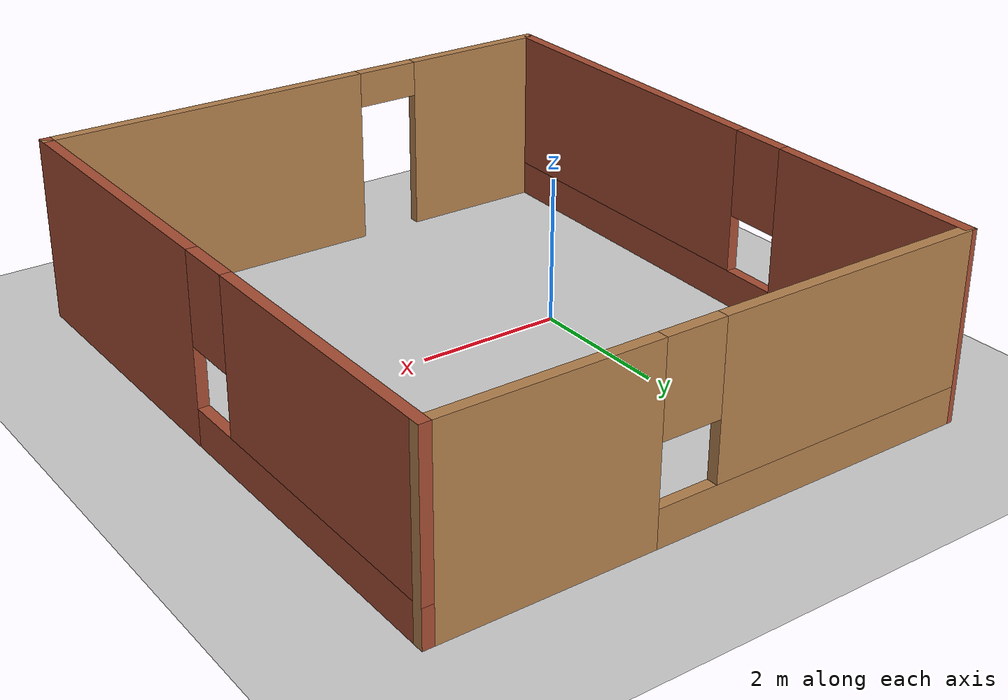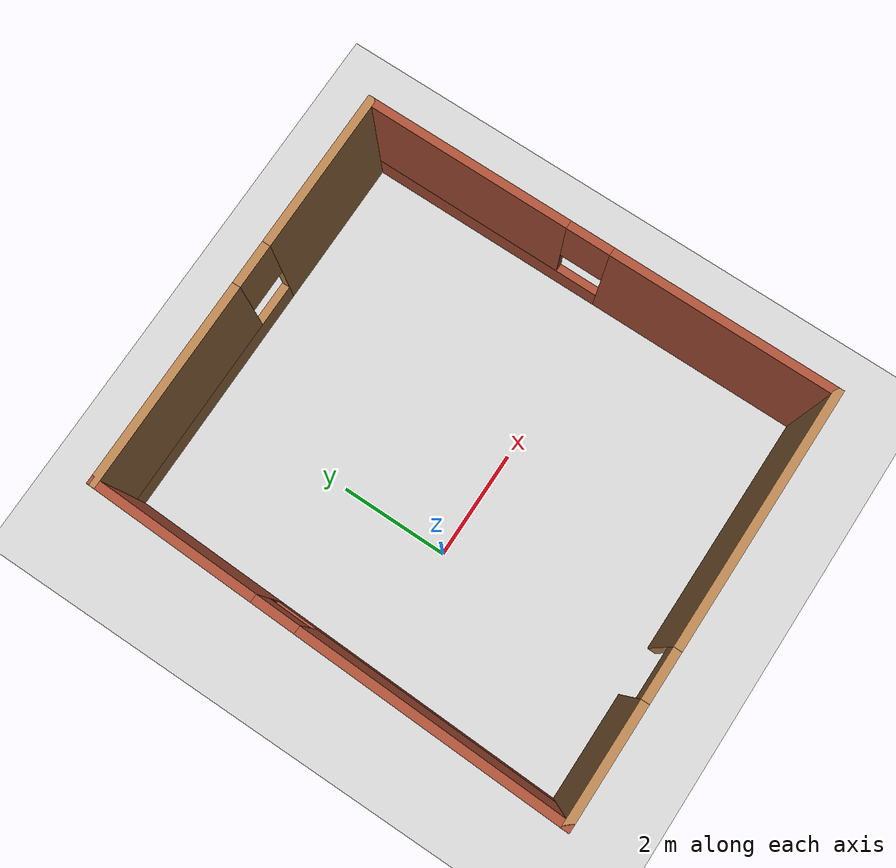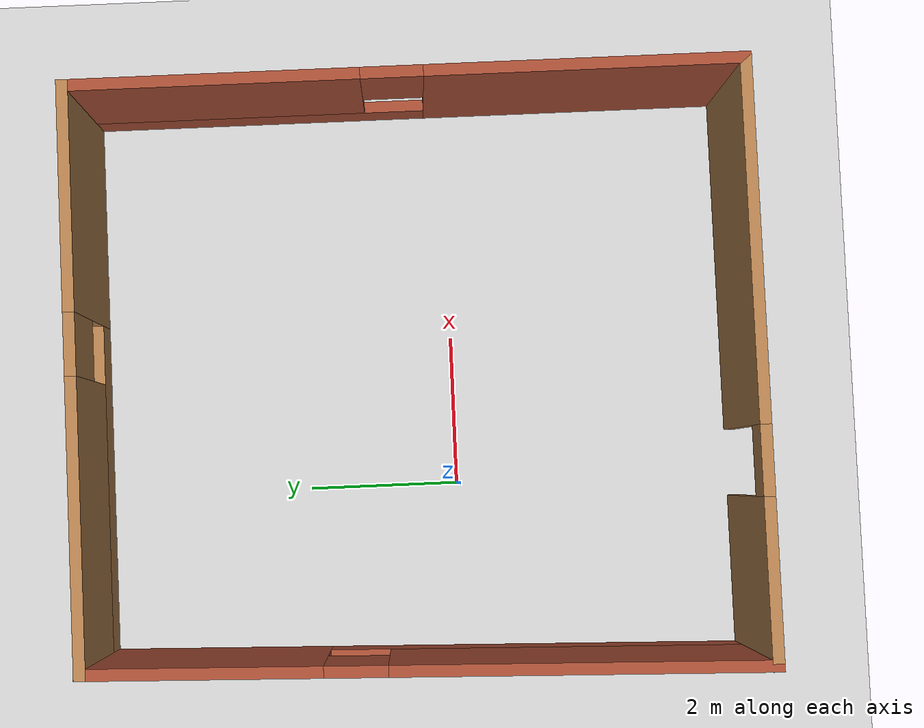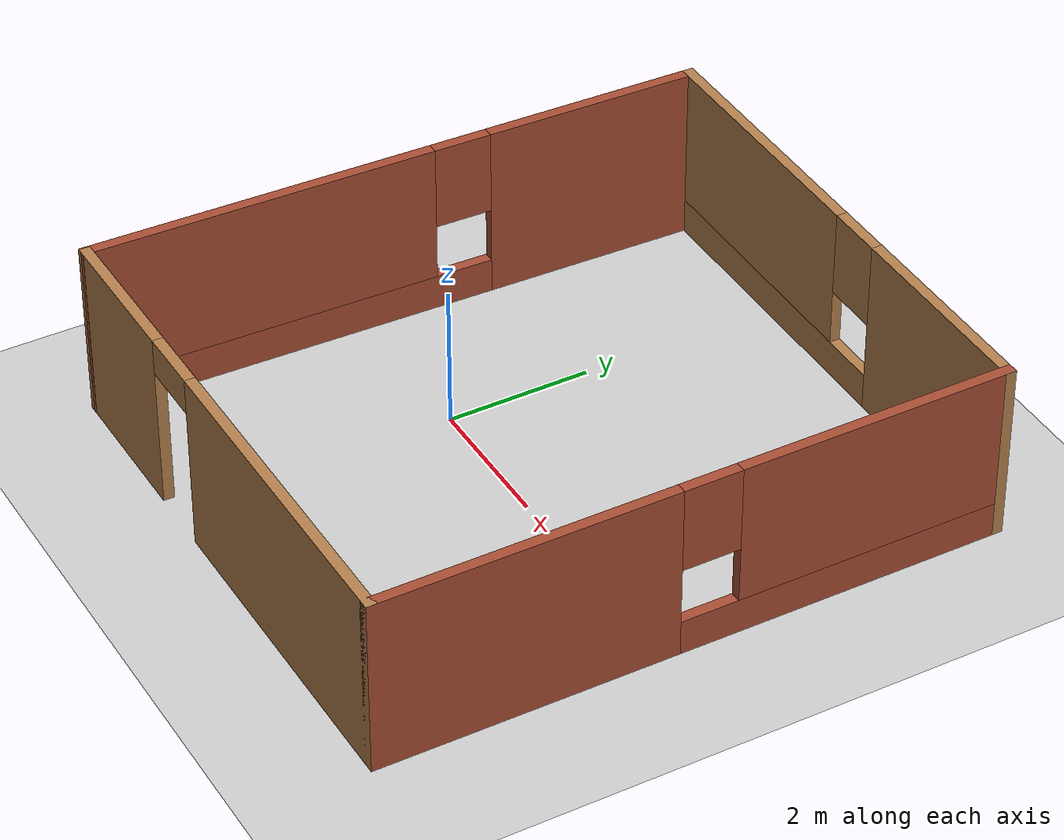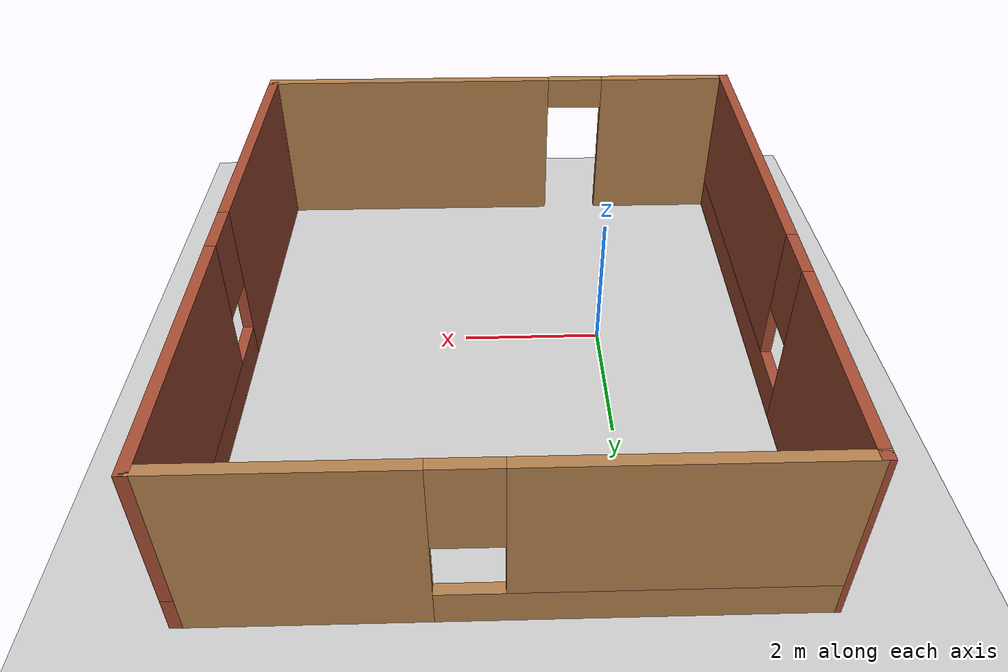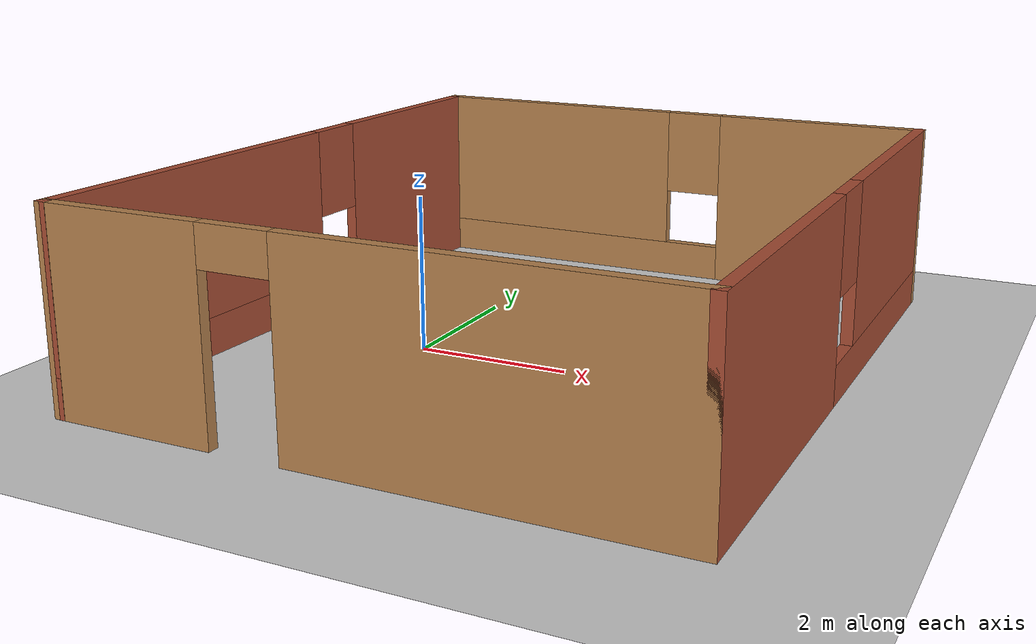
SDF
<sdf version="1.7">
 <world name="default">
  <light name="sun" type="directional">
   <pose>0 0 10 0 -0 0</pose>
   <diffuse>0.8 0.8 0.8 1</diffuse>
   <specular>0.2 0.2 0.2 1</specular>
   <attenuation>
    <range>1000</range>
    <constant>0.9</constant>
    <linear>0.01</linear>
    <quadratic>0.001</quadratic>
   </attenuation>
   <direction>-0.5 0.1 -0.9</direction>
   <spot><inner_angle>0</inner_angle><outer_angle>0</outer_angle><falloff>0</falloff></spot>
  </light>
  <model name="ground_plane">
   <static>1</static>
   <link name="link">
    <collision name="collision">
     <geometry><plane><normal>0 0 1</normal><size>100 100</size></plane></geometry>
     <surface>
      <contact><collide_bitmask>65535</collide_bitmask></contact>
      <friction><ode><mu>100</mu><mu2>50</mu2></ode></friction>
     </surface>
    </collision>
    <visual name="visual">
     <cast_shadows>0</cast_shadows>
     <geometry><plane><normal>0 0 1</normal><size>100 100</size></plane></geometry>
     <material>
      <script><uri>file://media/materials/scripts/gazebo.material</uri><name>Gazebo/Grey</name></script>
     </material>
    </visual>
   </link>
  </model>
  <gravity>0 0 -9.8</gravity>
  <magnetic_field>6e-06 2.3e-05 -4.2e-05</magnetic_field>
  <atmosphere type="adiabatic"/>
  <physics type="ode">
   <max_step_size>0.001</max_step_size>
   <real_time_factor>1</real_time_factor>
   <real_time_update_rate>1000</real_time_update_rate>
  </physics>
  <scene><ambient>0.4 0.4 0.4 1</ambient><background>0.7 0.7 0.7 1</background><shadows>1</shadows></scene>
  <audio><device>default</device></audio>
  <spherical_coordinates>
   <surface_model>EARTH_WGS84</surface_model>
   <latitude_deg>0</latitude_deg>
   <longitude_deg>0</longitude_deg>
   <elevation>0</elevation>
   <heading_deg>0</heading_deg>
  </spherical_coordinates>
  <model name="my_building">
   <pose>1.38893 0.5 0 0 -0 0</pose>
   <link name="Wall_0">
    <pose>0.001073 -4.3 0 0 -0 0</pose>
    <visual name="Wall_0_Visual_0">
     <pose>-2.79648 0 1.25 0 -0 0</pose>
     <geometry><box><size>2.15703 0.15 2.5</size></box></geometry>
     <material>
      <script><uri>file://media/materials/scripts/gazebo.material</uri><name>Gazebo/Wood</name></script>
      <ambient>1 1 1 1</ambient>
     </material>
     <meta><layer>0</layer></meta>
    </visual>
    <collision name="Wall_0_Collision_0">
     <geometry><box><size>2.15703 0.15 2.5</size></box></geometry>
     <pose>-2.79648 0 1.25 0 -0 0</pose>
    </collision>
    <visual name="Wall_0_Visual_1">
     <pose>1.52852 0 1.25 0 -0 0</pose>
     <geometry><box><size>4.69297 0.15 2.5</size></box></geometry>
     <material>
      <script><uri>file://media/materials/scripts/gazebo.material</uri><name>Gazebo/Wood</name></script>
      <ambient>1 1 1 1</ambient>
     </material>
     <meta><layer>0</layer></meta>
    </visual>
    <collision name="Wall_0_Collision_1">
     <geometry><box><size>4.69297 0.15 2.5</size></box></geometry>
     <pose>1.52852 0 1.25 0 -0 0</pose>
    </collision>
    <visual name="Wall_0_Visual_2">
     <pose>-1.26797 0 2.25 0 -0 0</pose>
     <geometry><box><size>0.9 0.15 0.5</size></box></geometry>
     <material>
      <script><uri>file://media/materials/scripts/gazebo.material</uri><name>Gazebo/Wood</name></script>
      <ambient>1 1 1 1</ambient>
     </material>
     <meta><layer>0</layer></meta>
    </visual>
    <collision name="Wall_0_Collision_2">
     <geometry><box><size>0.9 0.15 0.5</size></box></geometry>
     <pose>-1.26797 0 2.25 0 -0 0</pose>
    </collision>
   </link>
   <link name="Wall_1">
    <pose>3.80107 0 0 0 -0 1.5708</pose>
    <visual name="Wall_1_Visual_0">
     <pose>-2.31018 0 1.25 0 -0 0</pose>
     <geometry><box><size>4.12964 0.15 2.5</size></box></geometry>
     <material>
      <script><uri>file://media/materials/scripts/gazebo.material</uri><name>Gazebo/Bricks</name></script>
      <ambient>1 1 1 1</ambient>
     </material>
     <meta><layer>0</layer></meta>
    </visual>
    <collision name="Wall_1_Collision_0">
     <geometry><box><size>4.12964 0.15 2.5</size></box></geometry>
     <pose>-2.31018 0 1.25 0 -0 0</pose>
    </collision>
    <visual name="Wall_1_Visual_1">
     <pose>2.06482 0 0.25 0 -0 0</pose>
     <geometry><box><size>4.62036 0.15 0.5</size></box></geometry>
     <material>
      <script><uri>file://media/materials/scripts/gazebo.material</uri><name>Gazebo/Bricks</name></script>
      <ambient>1 1 1 1</ambient>
     </material>
     <meta><layer>0</layer></meta>
    </visual>
    <collision name="Wall_1_Collision_1">
     <geometry><box><size>4.62036 0.15 0.5</size></box></geometry>
     <pose>2.06482 0 0.25 0 -0 0</pose>
    </collision>
    <visual name="Wall_1_Visual_2">
     <pose>2.46482 0 1.5 0 -0 0</pose>
     <geometry><box><size>3.82036 0.15 2</size></box></geometry>
     <material>
      <script><uri>file://media/materials/scripts/gazebo.material</uri><name>Gazebo/Bricks</name></script>
      <ambient>1 1 1 1</ambient>
     </material>
     <meta><layer>0</layer></meta>
    </visual>
    <collision name="Wall_1_Collision_2">
     <geometry><box><size>3.82036 0.15 2</size></box></geometry>
     <pose>2.46482 0 1.5 0 -0 0</pose>
    </collision>
    <visual name="Wall_1_Visual_3">
     <pose>0.15464 0 1.9 0 -0 0</pose>
     <geometry><box><size>0.8 0.15 1.2</size></box></geometry>
     <material>
      <script><uri>file://media/materials/scripts/gazebo.material</uri><name>Gazebo/Bricks</name></script>
      <ambient>1 1 1 1</ambient>
     </material>
     <meta><layer>0</layer></meta>
    </visual>
    <collision name="Wall_1_Collision_3">
     <geometry><box><size>0.8 0.15 1.2</size></box></geometry>
     <pose>0.15464 0 1.9 0 -0 0</pose>
    </collision>
   </link>
   <link name="Wall_2">
    <pose>0.126073 4.3 0 0 -0 3.14159</pose>
    <visual name="Wall_2_Visual_0">
     <pose>-2.28292 0 1.25 0 -0 0</pose>
     <geometry><box><size>2.93415 0.15 2.5</size></box></geometry>
     <material>
      <script><uri>file://media/materials/scripts/gazebo.material</uri><name>Gazebo/Wood</name></script>
      <ambient>1 1 1 1</ambient>
     </material>
     <meta><layer>0</layer></meta>
    </visual>
    <collision name="Wall_2_Collision_0">
     <geometry><box><size>2.93415 0.15 2.5</size></box></geometry>
     <pose>-2.28292 0 1.25 0 -0 0</pose>
    </collision>
    <visual name="Wall_2_Visual_1">
     <pose>1.46708 0 0.25 0 -0 0</pose>
     <geometry><box><size>4.56585 0.15 0.5</size></box></geometry>
     <material>
      <script><uri>file://media/materials/scripts/gazebo.material</uri><name>Gazebo/Wood</name></script>
      <ambient>1 1 1 1</ambient>
     </material>
     <meta><layer>0</layer></meta>
    </visual>
    <collision name="Wall_2_Collision_1">
     <geometry><box><size>4.56585 0.15 0.5</size></box></geometry>
     <pose>1.46708 0 0.25 0 -0 0</pose>
    </collision>
    <visual name="Wall_2_Visual_2">
     <pose>1.86708 0 1.5 0 -0 0</pose>
     <geometry><box><size>3.76585 0.15 2</size></box></geometry>
     <material>
      <script><uri>file://media/materials/scripts/gazebo.material</uri><name>Gazebo/Wood</name></script>
      <ambient>1 1 1 1</ambient>
     </material>
     <meta><layer>0</layer></meta>
    </visual>
    <collision name="Wall_2_Collision_2">
     <geometry><box><size>3.76585 0.15 2</size></box></geometry>
     <pose>1.86708 0 1.5 0 -0 0</pose>
    </collision>
    <visual name="Wall_2_Visual_3">
     <pose>-0.415846 0 1.9 0 -0 0</pose>
     <geometry><box><size>0.8 0.15 1.2</size></box></geometry>
     <material>
      <script><uri>file://media/materials/scripts/gazebo.material</uri><name>Gazebo/Wood</name></script>
      <ambient>1 1 1 1</ambient>
     </material>
     <meta><layer>0</layer></meta>
    </visual>
    <collision name="Wall_2_Collision_3">
     <geometry><box><size>0.8 0.15 1.2</size></box></geometry>
     <pose>-0.415846 0 1.9 0 -0 0</pose>
    </collision>
   </link>
   <link name="Wall_3">
    <pose>-3.67393 0 0 0 -0 -1.59986</pose>
    <visual name="Wall_3_Visual_0">
     <pose>-2.83852 0 1.25 0 -0 0</pose>
     <geometry><box><size>3.0766 0.15 2.5</size></box></geometry>
     <material>
      <script><uri>file://media/materials/scripts/gazebo.material</uri><name>Gazebo/Bricks</name></script>
      <ambient>1 1 1 1</ambient>
     </material>
     <meta><layer>0</layer></meta>
    </visual>
    <collision name="Wall_3_Collision_0">
     <geometry><box><size>3.0766 0.15 2.5</size></box></geometry>
     <pose>-2.83852 0 1.25 0 -0 0</pose>
    </collision>
    <visual name="Wall_3_Visual_1">
     <pose>1.5383 0 0.25 0 -0 0</pose>
     <geometry><box><size>5.67703 0.15 0.5</size></box></geometry>
     <material>
      <script><uri>file://media/materials/scripts/gazebo.material</uri><name>Gazebo/Bricks</name></script>
      <ambient>1 1 1 1</ambient>
     </material>
     <meta><layer>0</layer></meta>
    </visual>
    <collision name="Wall_3_Collision_1">
     <geometry><box><size>5.67703 0.15 0.5</size></box></geometry>
     <pose>1.5383 0 0.25 0 -0 0</pose>
    </collision>
    <visual name="Wall_3_Visual_2">
     <pose>1.9383 0 1.5 0 -0 0</pose>
     <geometry><box><size>4.87703 0.15 2</size></box></geometry>
     <material>
      <script><uri>file://media/materials/scripts/gazebo.material</uri><name>Gazebo/Bricks</name></script>
      <ambient>1 1 1 1</ambient>
     </material>
     <meta><layer>0</layer></meta>
    </visual>
    <collision name="Wall_3_Collision_2">
     <geometry><box><size>4.87703 0.15 2</size></box></geometry>
     <pose>1.9383 0 1.5 0 -0 0</pose>
    </collision>
    <visual name="Wall_3_Visual_3">
     <pose>-0.900217 0 1.9 0 -0 0</pose>
     <geometry><box><size>0.8 0.15 1.2</size></box></geometry>
     <material>
      <script><uri>file://media/materials/scripts/gazebo.material</uri><name>Gazebo/Bricks</name></script>
      <ambient>1 1 1 1</ambient>
     </material>
     <meta><layer>0</layer></meta>
    </visual>
    <collision name="Wall_3_Collision_3">
     <geometry><box><size>0.8 0.15 1.2</size></box></geometry>
     <pose>-0.900217 0 1.9 0 -0 0</pose>
    </collision>
   </link>
   <static>1</static>
  </model>
 </world>
</sdf>
